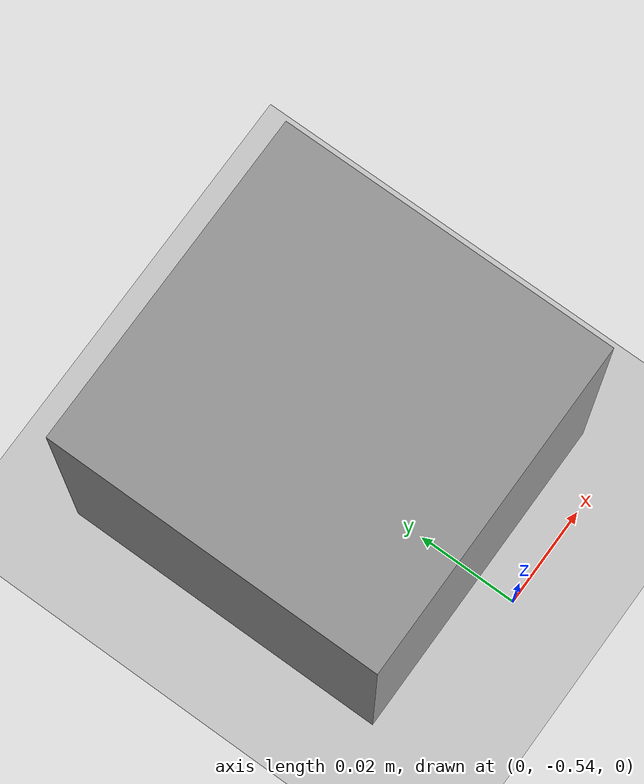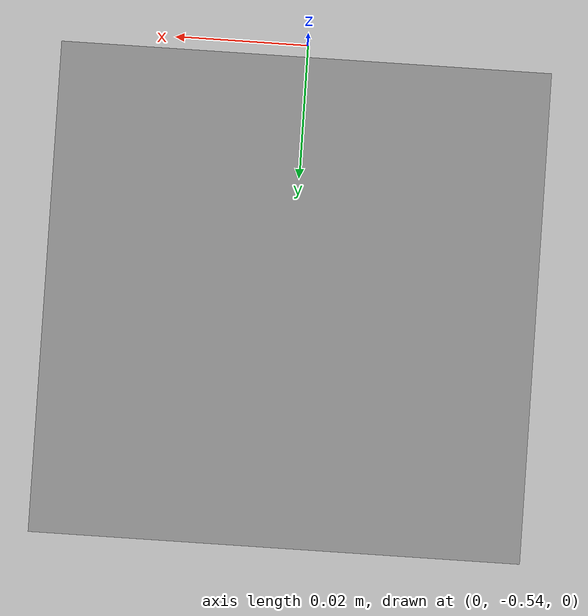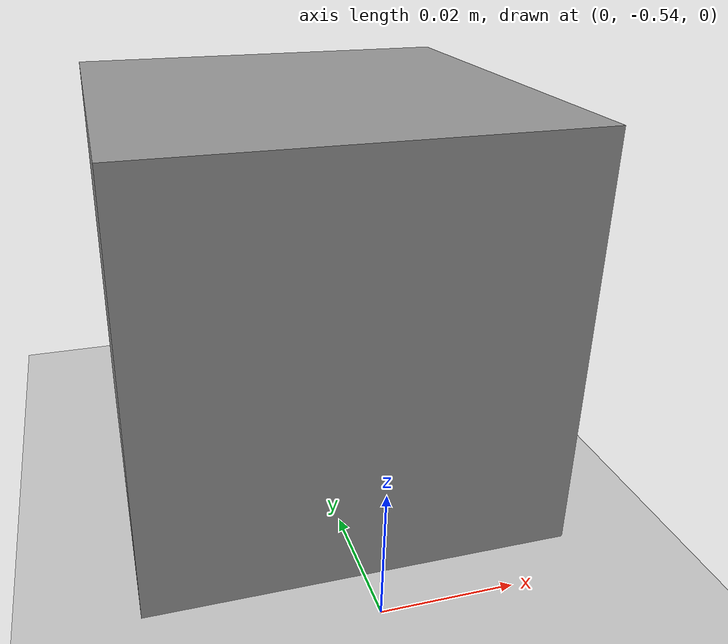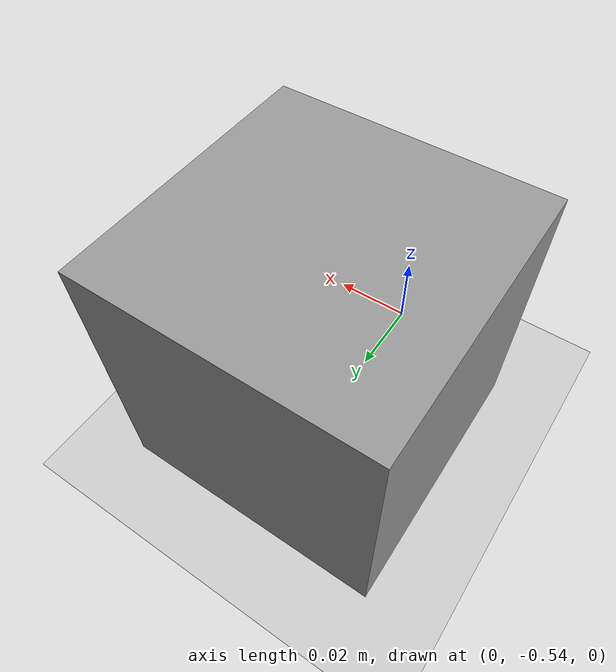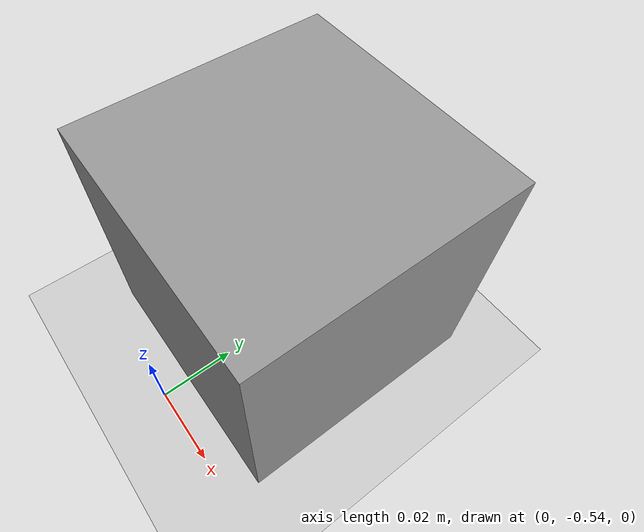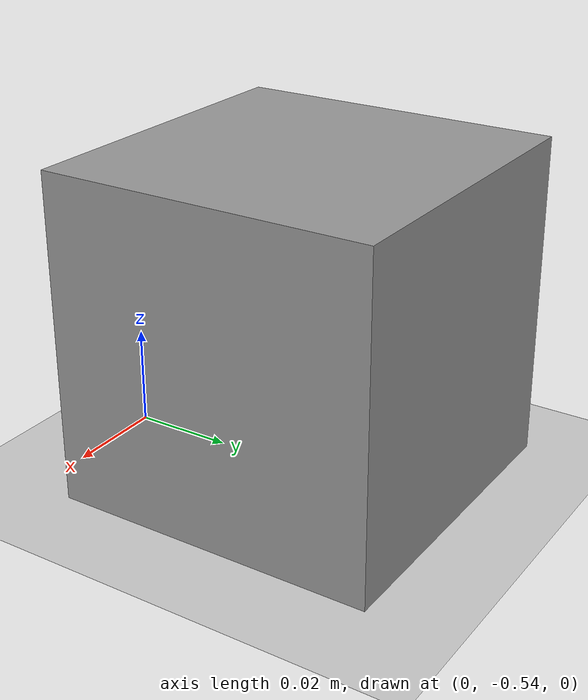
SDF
<sdf version="1.6">
 <world name="default">
  <light name="sun" type="directional">
   <pose>0 0 10 0 -0 0</pose>
   <diffuse>0.8 0.8 0.8 1</diffuse>
   <specular>0.2 0.2 0.2 1</specular>
   <attenuation>
    <range>1000</range>
    <constant>0.9</constant>
    <linear>0.01</linear>
    <quadratic>0.001</quadratic>
   </attenuation>
   <direction>-0.5 0.1 -0.9</direction>
  </light>
  <model name="ground_plane">
   <static>1</static>
   <link name="link">
    <collision name="collision">
     <geometry><plane><normal>0 0 1</normal><size>100 100</size></plane></geometry>
     <surface><friction><ode><mu>0.4</mu><mu2>0.4</mu2></ode></friction></surface>
    </collision>
    <visual name="visual">
     <cast_shadows>0</cast_shadows>
     <geometry><plane><normal>0 0 1</normal><size>100 100</size></plane></geometry>
     <material>
      <script><uri>file://media/materials/scripts/gazebo.material</uri><name>Gazebo/Grey</name></script>
     </material>
    </visual>
   </link>
  </model>
  <gravity>0 0 -9.8</gravity>
  <magnetic_field>6e-06 2.3e-05 -4.2e-05</magnetic_field>
  <atmosphere type="adiabatic"/>
  <physics name="default_physics" default="0" type="ode">
   <max_step_size>0.001</max_step_size>
   <real_time_factor>1</real_time_factor>
   <real_time_update_rate>1000</real_time_update_rate>
   <gravity>0.000000 0.000000 -9.810000</gravity>
   <ode>
    <solver><type>quick</type><iters>100</iters><precon_iters>0</precon_iters><sor>1.000000</sor></solver>
    <constraints>
     <cfm>0.000000</cfm>
     <erp>0.500000</erp>
     <contact_max_correcting_vel>1000.000000</contact_max_correcting_vel>
     <contact_surface_layer>0.00000</contact_surface_layer>
    </constraints>
   </ode>
  </physics>
  <scene><ambient>0.4 0.4 0.4 1</ambient><background>0.7 0.7 0.7 1</background><shadows>1</shadows></scene>
  <spherical_coordinates>
   <surface_model>EARTH_WGS84</surface_model>
   <latitude_deg>0</latitude_deg>
   <longitude_deg>0</longitude_deg>
   <elevation>0</elevation>
   <heading_deg>0</heading_deg>
  </spherical_coordinates>
  <model name="unit_box">
   <pose>0 -0.5 0.032518 0 -0 0</pose>
   <link name="link">
    <inertial>
     <mass>1</mass>
     <inertia>
      <ixx>0.166667</ixx>
      <ixy>0</ixy>
      <ixz>0</ixz>
      <iyy>0.166667</iyy>
      <iyz>0</iyz>
      <izz>0.166667</izz>
     </inertia>
    </inertial>
    <collision name="collision">
     <geometry><box><size>0.0650354 0.0650354 0.0650354</size></box></geometry>
    </collision>
    <visual name="visual">
     <geometry><box><size>0.0650354 0.0650354 0.0650354</size></box></geometry>
     <surface><friction><ode><mu>10.0</mu><mu2>5.0</mu2></ode></friction></surface>
     <material>
      <script><name>Gazebo/Grey</name><uri>file://media/materials/scripts/gazebo.material</uri></script>
     </material>
    </visual>
   </link>
  </model>
 </world>
</sdf>
